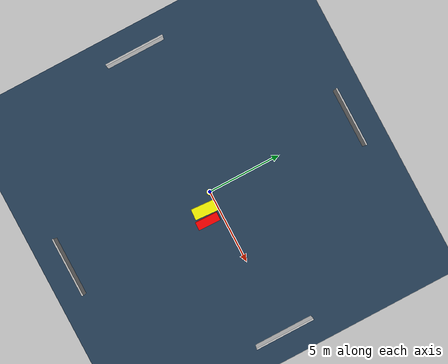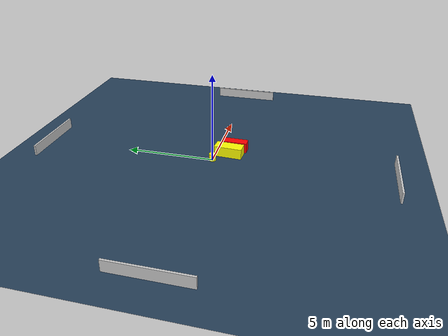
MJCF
<?xml version="1.0" ?>
<mujoco model="generated_environment">
  <option timestep="0.01" integrator="RK4" cone="elliptic"/>
  <default>
    <geom density="1"/>
  </default>
  <asset>
    <texture builtin="gradient" height="3072" name="skybox" rgb1="0.3 0.5 0.7" rgb2="0 0 0" type="skybox" width="512"/>
    <texture builtin="checker" height="300" name="groundplane" rgb1="0.2 0.3 0.4" rgb2="0.1 0.2 0.3" type="2d" width="300"/>
    <material name="groundplane" reflectance="0.2" texrepeat="5 5" texture="groundplane"/>
  </asset>
  <worldbody>
    <light dir="0 0 -1" directional="true" pos="0 0 1.5"/>
    <geom condim="3" friction="0.5 0.005 0.001" material="groundplane" name="floor" pos="0 0 0" size="0 0 0.05" type="plane"/>
    <body name="walls">
      <geom name="wall_1" condim="4" pos="-10.0 0.0 0.3" rgba="0.800000011920929 0.800000011920929 0.800000011920929 1.0" size="0.05 2.0 0.3" type="box"/>
      <geom name="wall_2" condim="4" pos="10.0 0.0 0.3" rgba="0.800000011920929 0.800000011920929 0.800000011920929 1.0" size="0.05 2.0 0.3" type="box"/>
      <geom name="wall_3" condim="4" pos="0.0 -10.0 0.3" rgba="0.800000011920929 0.800000011920929 0.800000011920929 1.0" size="2.0 0.05 0.3" type="box"/>
      <geom name="wall_4" condim="4" pos="0.0 10.0 0.3" rgba="0.800000011920929 0.800000011920929 0.800000011920929 1.0" size="2.0 0.05 0.3" type="box"/>
    </body>
    <body name="robot">
      <joint name="joint_x" type="slide" pos="0 0 0" axis="1 0 0"/>
      <joint name="joint_y" type="slide" pos="0 0 0" axis="0 1 0"/>
      <geom name="robot" type="cylinder" pos="0.0 0.0 0.2" size="0.2 0.2 0.0" mass="5.0" friction="1.0 0.005 0.0001" condim="4" rgba="1.0 1.0 0.0 1.0"/>
    </body>
    <body name="obstacle_1_movable">
      <geom name="obstacle_1_movable" condim="4" pos="0.8369867868522185 -0.7696301054066402 0.3" euler="0 0 86.40159955289165" friction="0.0 0.005 0.001" rgba="1.0 1.0 0.0 1.0" size="0.7991363635433708 0.3614084616807709 0.3" type="box" mass="0.1"/>
      <joint type="free"/>
    </body>
    <body name="obstacle_2_static">
      <geom name="obstacle_2_static" condim="4" pos="1.5567237025086402 -0.9494260783692902 0.3" euler="0 0 358.5665746308034" friction="0.0 0.005 0.001" rgba="1.0 0.0 0.0 1.0" size="0.27466600810217295 0.7455909475156592 0.3" type="box"/>
    </body>
  </worldbody>
  <actuator>
    <motor name="actuator_x" joint="joint_x" gear="1" ctrlrange="-1 1"/>
    <motor name="actuator_y" joint="joint_y" gear="1" ctrlrange="-1 1"/>
  </actuator>
</mujoco>
